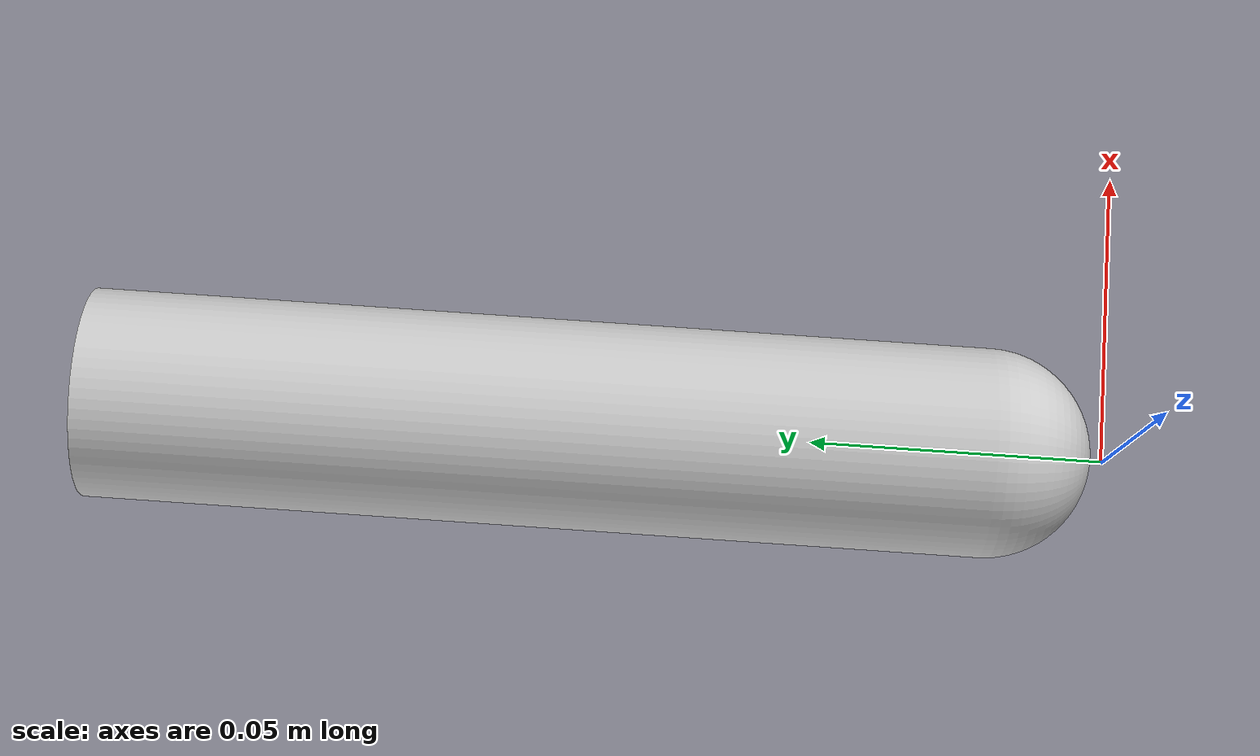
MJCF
<mujoco model="tubes">
  <default>
    <default class="visual">
      <geom group="2" type="mesh" contype="0" conaffinity="0"/>
    </default>
    <default class="collision">
      <geom group="3" type="mesh"/>
    </default>
  </default>
  <asset>
    <material name="2" specular="0.5" shininess="0.36" rgba="0.800000 0.800000 0.800000 1.000000"/>
    <material name="Material" specular="0.5" shininess="0.25" rgba="0.800000 0.800000 0.800000 1.000000"/>
    <mesh file="tubes_0.obj"/>
    <mesh file="tubes_1.obj"/>
    <mesh file="tubes_collision_0.obj"/>
    <mesh file="tubes_collision_1.obj"/>
    <mesh file="tubes_collision_2.obj"/>
    <mesh file="tubes_collision_3.obj"/>
    <mesh file="tubes_collision_4.obj"/>
    <mesh file="tubes_collision_5.obj"/>
    <mesh file="tubes_collision_6.obj"/>
    <mesh file="tubes_collision_7.obj"/>
  </asset>
  <worldbody>
    <body name="tubes">
      <geom mesh="tubes_0" material="2" class="visual"/>
      <geom mesh="tubes_1" material="Material" class="visual"/>
      <geom mesh="tubes_collision_0" rgba="0.35836377474560854 0.26411442835804966 0.7019641163646545 1" class="collision"/>
      <geom mesh="tubes_collision_1" rgba="0.7779370181275057 0.18579253036964083 0.8506990250057049 1" class="collision"/>
      <geom mesh="tubes_collision_2" rgba="0.8858779126188596 0.866708997232386 0.9173351450639713 1" class="collision"/>
      <geom mesh="tubes_collision_3" rgba="0.5895740318276922 0.06964640407029121 0.6886889629900793 1" class="collision"/>
      <geom mesh="tubes_collision_4" rgba="0.5654816755371113 0.3232094501385938 0.8290903995512997 1" class="collision"/>
      <geom mesh="tubes_collision_5" rgba="0.9244472748432245 0.770927086861175 0.450859473525967 1" class="collision"/>
      <geom mesh="tubes_collision_6" rgba="0.44918891404161254 0.5486590764420568 0.002573597238938019 1" class="collision"/>
      <geom mesh="tubes_collision_7" rgba="0.2583959888989872 0.09653549954398588 0.5506833275478809 1" class="collision"/>
    </body>
  </worldbody>
</mujoco>
